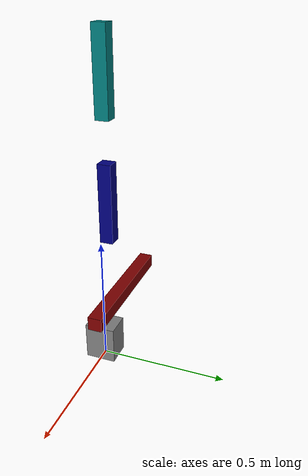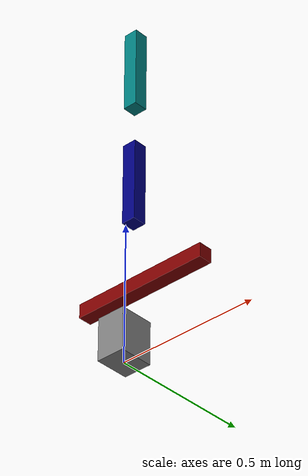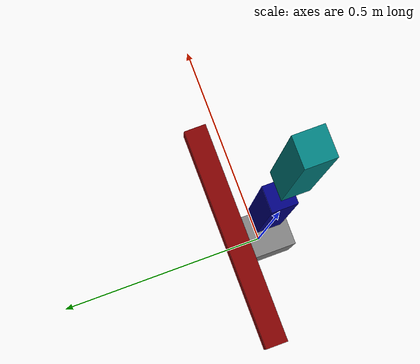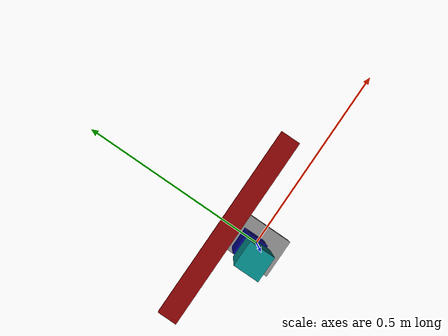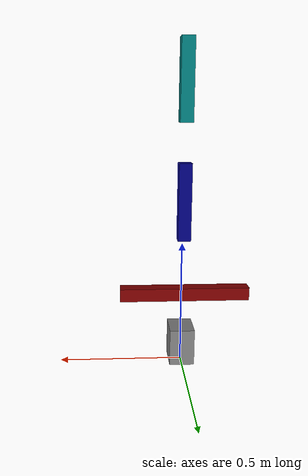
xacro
<?xml version="1.0" encoding="utf-8"?>

<robot name="robot_scara" xmlns:xacro="http://ros.org/wiki/xacro">

    <link name="world">
    </link>

    <joint name="world_to_base_link" type="fixed">
        <parent link="world"/>
        <child link="base_link"/>
        <origin xyz="0.0 0.0 0.0" rpy="0.0 0.0 0.0"/>
    </joint>

    <link name="base_link">
        <visual>
            <origin xyz="0.0 0.0 0.075" rpy="0.0 0.0 0.0"/>
            <geometry>
                <box size="0.1 0.12 0.15"/>
            </geometry>
            <material name="grey">
                <color rgba="0.5 0.5 0.5 1.0" />
            </material>
        </visual>
        <collision>
            <origin xyz="0.0 0.0 0.075" rpy="0.0 0.0 0.0"/>
            <geometry>
                <box size="0.1 0.12 0.15"/>
            </geometry>
        </collision>
        <inertial>
            <mass value="0.5"/>
            <origin xyz="0.0 0.0 0.0" rpy="0.0 0.0 0.0"/>
            <inertia ixx="0.1" ixy="0.0" ixz="0.0" iyy="1.0" iyz="0.0" izz="1.0"/>
        </inertial>
    </link>

    <link name="link_1">
        <visual>
            <origin xyz="0.0 0.025 0.25" rpy="0.0 0.0 0.0"/>
            <geometry>
                <box size="0.5 0.05 0.05"/>
            </geometry>
            <material name="red">
                <color rgba="0.5 0.0 0.0 1.0" />
            </material>
        </visual>
        <collision>
            <origin xyz="0.0 0.025 0.25" rpy="0.0 0.0 0.0"/>
            <geometry>
                <box size="0.05 0.05 0.5"/>
            </geometry>
        </collision>
        <inertial>
            <mass value="0.3"/>
            <origin xyz="0.0 0.0 0.0" rpy="0.0 0.0 0.0"/>
            <inertia ixx="0.1" ixy="0.0" ixz="0.0" iyy="1.0" iyz="0.0" izz="1.0"/>
        </inertial>
    </link>

   <joint name="base_link_to_link_1" type="revolute">
    <parent link="base_link"/>
    <child link="link_1"/>
    <axis xyz="0 1 0"/>
    <limit lower="-0.750" upper="0.750" velocity="10.0" effort="500.0"/>
    <origin xyz="0.0 0.06 0.075" rpy="0 0 0"/>
   </joint>

   <!-- Nuevo eslabón (link_2) -->
   <link name="link_2">
        <visual>
            <origin xyz="0.0 -0.025 0.15" rpy="0.0 0.0 0.0"/>
            <geometry>
                <box size="0.05 0.05 0.3"/>
            </geometry>
            <material name="blue">
                <color rgba="0.0 0.0 0.5 1.0" />
            </material>
        </visual>
        <collision>
            <origin xyz="0.0 -0.025 0.15" rpy="0.0 0.0 0.0"/>
            <geometry>
                <box size="0.05 0.05 0.3"/>
            </geometry>
        </collision>
        <inertial>
            <mass value="0.2"/>
            <origin xyz="0.0 0.0 0.0" rpy="0.0 0.0 0.0"/>
            <inertia ixx="0.05" ixy="0.0" ixz="0.0" iyy="0.5" iyz="0.0" izz="0.5"/>
        </inertial>
    </link>

   <!-- Junta revoluta entre link_1 y link_2 -->
   <joint name="link_1_to_link_2" type="revolute">
    <parent link="link_1"/>
    <child link="link_2"/>
    <axis xyz="0 1 0"/>
    <limit lower="-1.5708" upper="1.5708" velocity="50.0" effort="1000.0"/>
    <origin xyz="0.0 0.0 0.45" rpy="0 0 0"/>
   </joint>

     <!-- Nuevo eslabón (link_3) -->
   <link name="link_3">
        <visual>
            <origin xyz="0.0 -0.025 0.15" rpy="0.0 0.0 0.0"/>
            <geometry>
                <box size="0.05 0.05 0.3"/>
            </geometry>
            <material name="color_1">
                <color rgba="0.0 0.5 0.5 1.0" />
            </material>
        </visual>
        <collision>
            <origin xyz="0.0 -0.025 0.15" rpy="0.0 0.0 0.0"/>
            <geometry>
                <box size="0.05 0.05 0.3"/>
            </geometry>
        </collision>
        <inertial>
            <mass value="0.2"/>
            <origin xyz="0.0 0.0 0.0" rpy="0.0 0.0 0.0"/>
            <inertia ixx="0.05" ixy="0.0" ixz="0.0" iyy="0.5" iyz="0.0" izz="0.5"/>
        </inertial>
    </link>

   <!-- Junta revoluta entre link_1 y link_2 -->
   <joint name="link_2_to_link_3" type="revolute">
    <parent link="link_2"/>
    <child link="link_3"/>
    <axis xyz="0 1 0"/>
    <limit lower="-1.5708" upper="1.5708" velocity="50.0" effort="1000.0"/>
    <origin xyz="0.0 0.0 0.45" rpy="0 0 0"/>
   </joint>
</robot>
